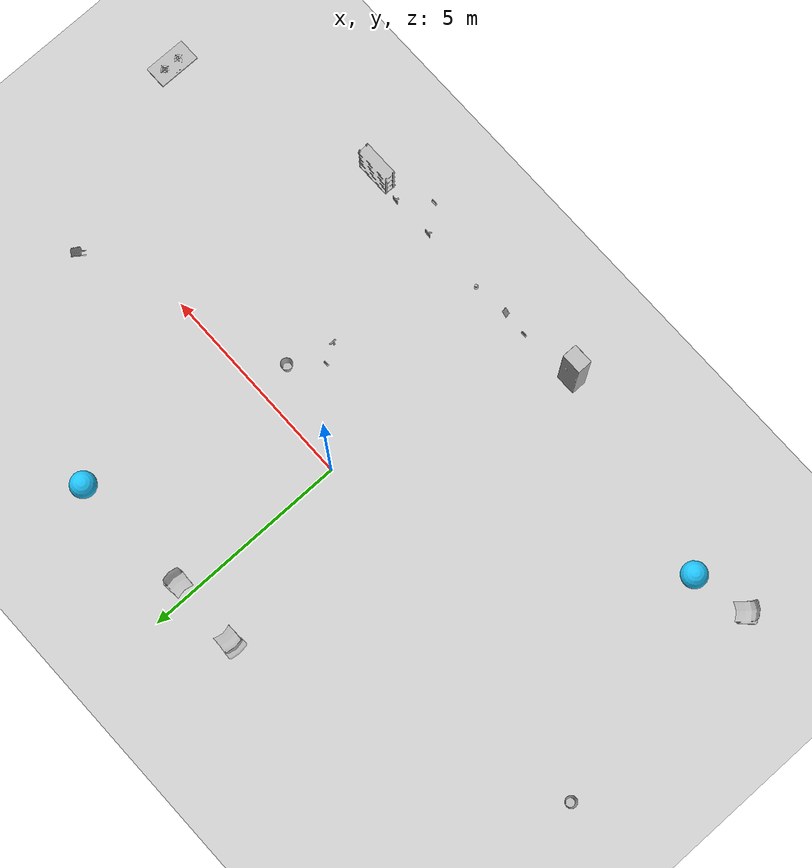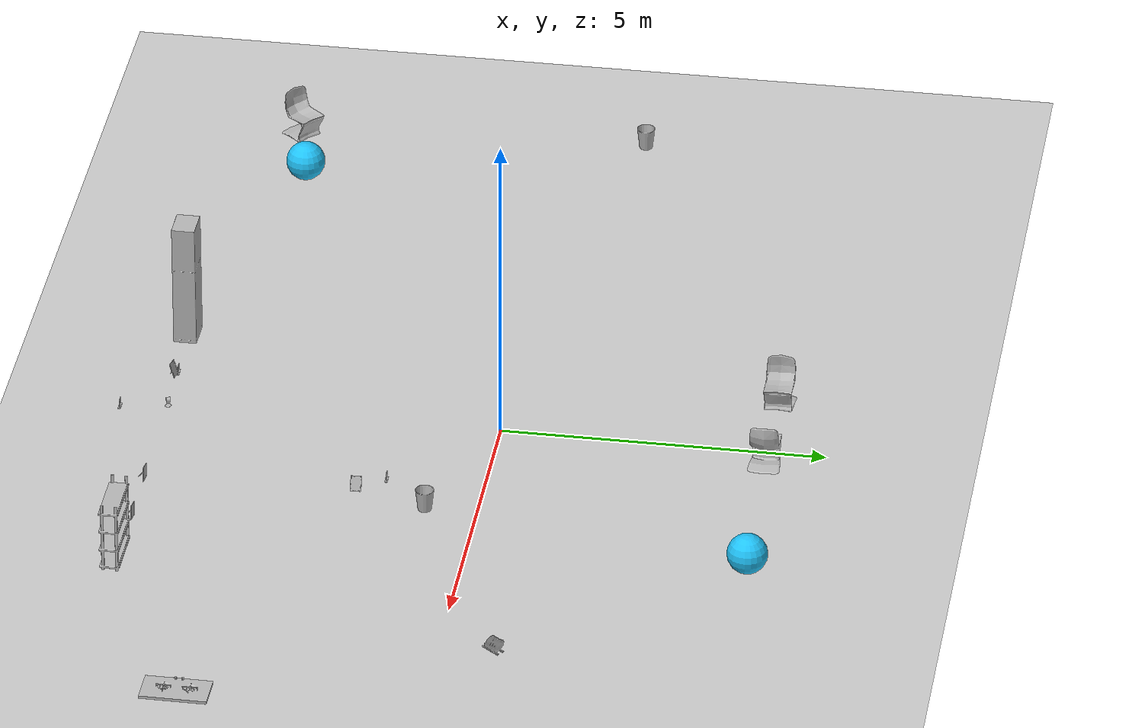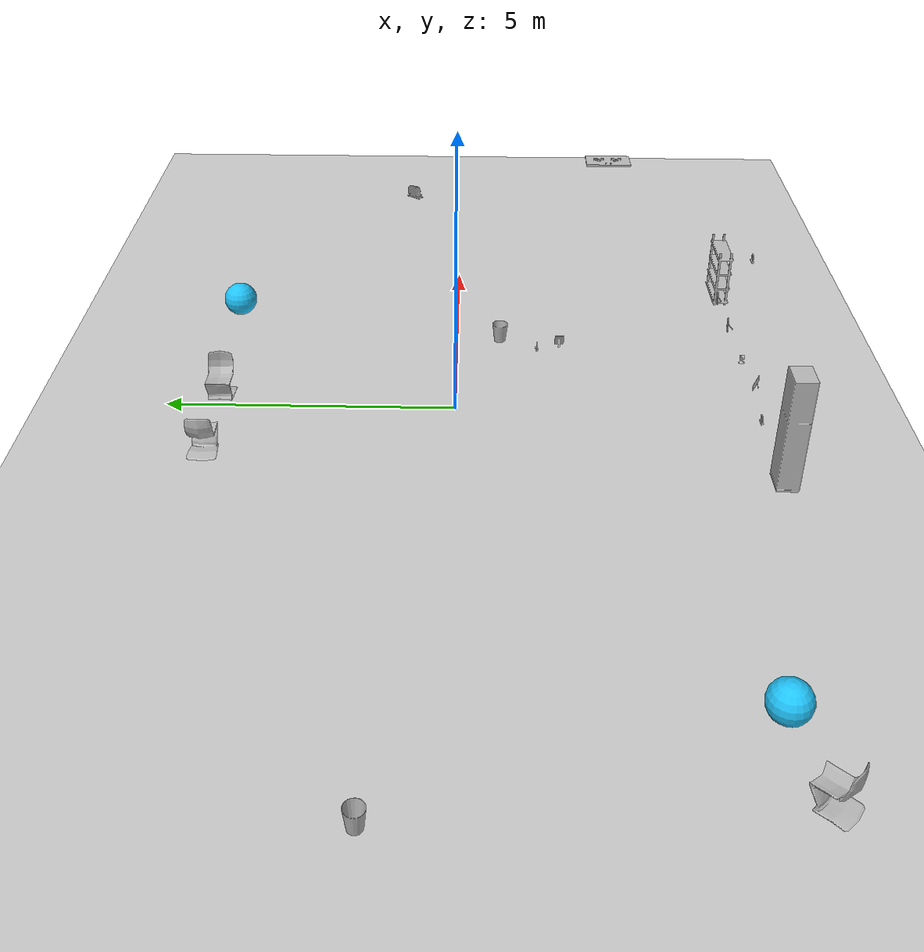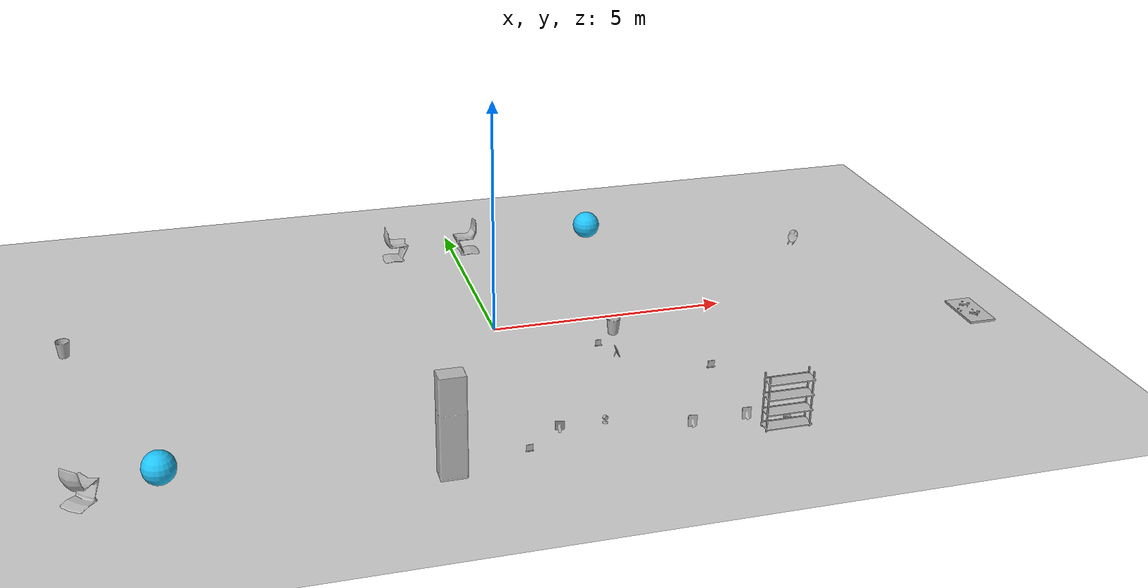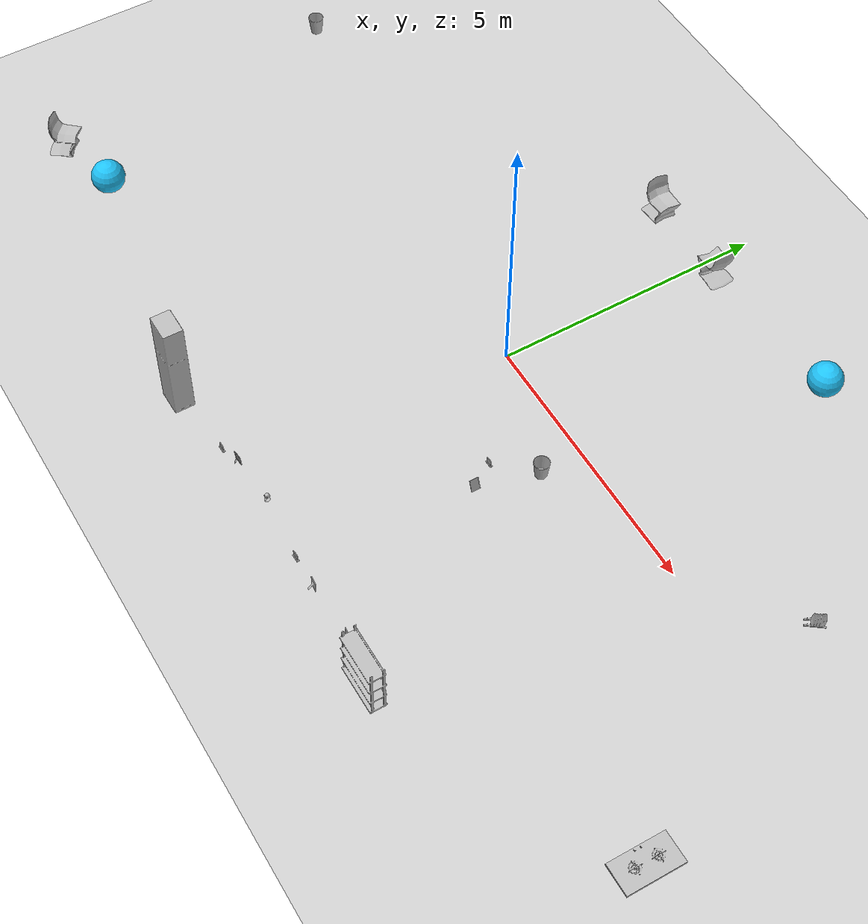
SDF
<sdf version="1.6">
 <world name="default">
  <gravity>0 0 -9.8</gravity>
  <magnetic_field>6e-06 2.3e-05 -4.2e-05</magnetic_field>
  <atmosphere type="adiabatic"/>
  <physics name="default_physics" default="0" type="ode">
   <max_step_size>0.002</max_step_size>
   <real_time_factor>1</real_time_factor>
   <real_time_update_rate>500</real_time_update_rate>
  </physics>
  <scene>
   <ambient>0.4 0.4 0.4 1</ambient>
   <background>0.7 0.7 0.7 1</background>
   <shadows>false</shadows>
   <grid>false</grid>
   <origin_visual>false</origin_visual>
  </scene>
  <spherical_coordinates>
   <surface_model>EARTH_WGS84</surface_model>
   <latitude_deg>0</latitude_deg>
   <longitude_deg>0</longitude_deg>
   <elevation>0</elevation>
   <heading_deg>0</heading_deg>
  </spherical_coordinates>
  <model name="ground_plane">
   <static>1</static>
   <link name="link">
    <collision name="collision">
     <geometry><plane><normal>0 0 1</normal><size>100 100</size></plane></geometry>
     <surface>
      <contact><collide_bitmask>65535</collide_bitmask></contact>
      <friction><ode><mu>100</mu><mu2>50</mu2></ode></friction>
     </surface>
    </collision>
    <visual name="visual">
     <cast_shadows>0</cast_shadows>
     <geometry><plane><normal>0 0 1</normal><size>100 100</size></plane></geometry>
     <material>
      <script><uri>file://media/materials/scripts/gazebo.material</uri><name>Gazebo/Grey</name></script>
     </material>
    </visual>
   </link>
  </model>
  <model name="AirconditionerB_01_001">
   <include><uri>model://aws_robomaker_residential_AirconditionerB_01</uri></include>
   <pose>-2.004656 -5.226610 0.003485 0 -0 0</pose>
  </model>
  <model name="Ball_01_001">
   <include><uri>model://aws_robomaker_residential_Ball_01</uri></include>
   <pose>3.295503 4.225674 0.318684 0 -0 0</pose>
  </model>
  <model name="Ball_01_003">
   <include><uri>model://aws_robomaker_residential_Ball_01</uri></include>
   <pose>-6.945503 -4.22174 0.318684 0 -0 0</pose>
  </model>
  <model name="ChairD_01_001">
   <include><uri>model://aws_robomaker_residential_ChairD_01</uri></include>
   <pose>-1.380775 4.104456 0 0 -0 0</pose>
  </model>
  <model name="ChairD_01_002">
   <include><uri>model://aws_robomaker_residential_ChairD_01</uri></include>
   <pose>0.325214 4.104456 0 0 -0 -3.138741</pose>
  </model>
  <model name="ChairD_01_003">
   <include><uri>model://aws_robomaker_residential_ChairD_01</uri></include>
   <pose>-8.270775 -4.504456 0 0 -0 0.869673</pose>
  </model>
  <model name="SecurityCamera_01_001">
   <include><uri>model://aws_robomaker_residential_SecurityCamera_01</uri></include>
   <pose>0.842134 -4.996294 0.495067 0 -0 -2.841039</pose>
  </model>
  <model name="CookingBench_01_001">
   <include><uri>model://aws_robomaker_residential_CookingBench_01</uri></include>
   <pose>9.038383 -3.351140 0.903610 0 -0 3.137133</pose>
   <static>true</static>
  </model>
  <model name="DeskPortraitA_01">
   <include><uri>model://aws_robomaker_residential_DeskPortraitA_01</uri></include>
   <pose>-0.036864 -5.110156 0.498660 0 -0 2.927784</pose>
  </model>
  <model name="DeskPortraitA_02">
   <include><uri>model://aws_robomaker_residential_DeskPortraitA_02</uri></include>
   <pose>2.046082 -1.892926 0.0703880 -0.018328 -0.000441 1.576216</pose>
  </model>
  <model name="DeskPortraitD_01">
   <include><uri>model://aws_robomaker_residential_DeskPortraitD_01</uri></include>
   <pose>2.645560 -5.376225 1.573738 0 -0 -3.112826</pose>
  </model>
  <model name="DeskPortraitD_02">
   <include><uri>model://aws_robomaker_residential_DeskPortraitD_02</uri></include>
   <pose>-0.589211 -5.109890 0.192145 -0.000015 -0.000174 -3.112544</pose>
  </model>
  <model name="DeskPortraitD_03">
   <include><uri>model://aws_robomaker_residential_DeskPortraitD_03</uri></include>
   <pose>1.826729 -1.464881 0.126208 0.000010 0.000006 -3.114380</pose>
  </model>
  <model name="DeskPortraitD_04">
   <include><uri>model://aws_robomaker_residential_DeskPortraitD_04</uri></include>
   <pose>4.302132 -5.176568 0.202496 0.007118 -0.000001 3.046683</pose>
  </model>
  <model name="DeskPortraitB_01">
   <include><uri>model://aws_robomaker_residential_DeskPortraitB_01</uri></include>
   <pose>3.547 -5.087950 0.202496 0.007118 -0.000001 3.046683</pose>
  </model>
  <model name="DeskPortraitB_02">
   <include><uri>model://aws_robomaker_residential_DeskPortraitB_02</uri></include>
   <pose>2.486082 -5.104568 0.202496 0.007118 -0.000001 3.046683</pose>
  </model>
  <model name="ShoeRack_01_001">
   <include><uri>model://aws_robomaker_residential_ShoeRack_01</uri></include>
   <pose>4.297978 -5.173566 0 0 -0 0</pose>
  </model>
  <model name="Tableware_01_001">
   <include><uri>model://aws_robomaker_residential_Tableware_01</uri></include>
   <pose>7.15317 0.982767 0.817812 -0.001238 -0.000976 1.02476</pose>
  </model>
  <model name="Trash_01_001">
   <include><uri>model://aws_robomaker_residential_Trash_01</uri></include>
   <pose>2.360151 -0.796238 0.011 0 -0 0</pose>
  </model>
  <model name="Trash_01_002">
   <include><uri>model://aws_robomaker_residential_Trash_01</uri></include>
   <pose>-8.704151 1.00058 0.011 0 -0 0</pose>
  </model>
  <light name="LivingRoom_CeilingLight_0" type="point">
   <pose>1.194296 4.155759 2.2 0 -0 0</pose>
   <diffuse>0.5 0.5 0.5 1</diffuse>
   <specular>0.1 0.1 0.1 1</specular>
   <attenuation>
    <range>20</range>
    <constant>0.32</constant>
    <linear>0.01</linear>
    <quadratic>0.03</quadratic>
   </attenuation>
   <cast_shadows>0</cast_shadows>
   <direction>0 0 -1</direction>
  </light>
  <light name="LivingRoom_CeilingLight_1" type="point">
   <pose>1.194296 -1.589959 2.2 0 -0 0</pose>
   <diffuse>0.5 0.5 0.5 1</diffuse>
   <specular>0.1 0.1 0.1 1</specular>
   <attenuation>
    <range>20</range>
    <constant>0.05</constant>
    <linear>0.01</linear>
    <quadratic>0.09</quadratic>
   </attenuation>
   <cast_shadows>0</cast_shadows>
   <direction>0 0 -1</direction>
  </light>
  <light name="LivingRoom_WallLight_0" type="point">
   <pose>1.76956 -5.444370 2.2 0 -0 0</pose>
   <diffuse>0.24 0.24 0.24 1</diffuse>
   <specular>0.1 0.1 0.1 1</specular>
   <attenuation>
    <range>20</range>
    <constant>0.12</constant>
    <linear>0.00</linear>
    <quadratic>0.03</quadratic>
   </attenuation>
   <direction>0 0 -1</direction>
  </light>
  <light name="LivingRoom_WallLight_1" type="point">
   <pose>-0.13826 -5.444370 2.2 0 -0 0</pose>
   <diffuse>0.24 0.24 0.24 1</diffuse>
   <specular>0.1 0.1 0.1 1</specular>
   <attenuation>
    <range>20</range>
    <constant>0.12</constant>
    <linear>0.00</linear>
    <quadratic>0.03</quadratic>
   </attenuation>
   <direction>0 0 -1</direction>
  </light>
  <light name="TV_Light_0" type="point">
   <pose>0.8269 -4.939577 1.1 0 -0 0</pose>
   <diffuse>0.31372 0.31372 0.34901 1</diffuse>
   <specular>0.1 0.1 0.1 1</specular>
   <attenuation>
    <range>3</range>
    <constant>0.10</constant>
    <linear>0.04</linear>
    <quadratic>0.50</quadratic>
   </attenuation>
   <direction>0 0 -1</direction>
  </light>
  <light name="BedRoom_Portrait_Light_0" type="spot">
   <pose>-6.190379 -1.829697 1.5587 0.3 -0 0.0</pose>
   <diffuse>0.5 0.5 0.5 1</diffuse>
   <specular>0.1 0.1 0.1 1</specular>
   <attenuation>
    <range>20</range>
    <constant>0.50</constant>
    <linear>0.01</linear>
    <quadratic>0.00</quadratic>
   </attenuation>
   <spot><inner_angle>0.6</inner_angle><outer_angle>1.0</outer_angle><falloff>1.0</falloff></spot>
   <direction>0 0 -1</direction>
  </light>
  <light name="BedRoom_CeilingLight_0" type="point">
   <pose>-6.451061 -0.692040 2.000000 0 -0 0</pose>
   <diffuse>0.5 0.5 0.5 1</diffuse>
   <specular>0.1 0.1 0.1 1</specular>
   <attenuation>
    <range>20</range>
    <constant>0.32</constant>
    <linear>0.01</linear>
    <quadratic>0.03</quadratic>
   </attenuation>
   <cast_shadows>0</cast_shadows>
   <direction>0 0 -1</direction>
  </light>
  <light name="Kitchen_CeilingLight_0" type="point">
   <pose>7.8582 -1.5905 2.280000 0 -0 0</pose>
   <diffuse>0.5 0.5 0.5 1</diffuse>
   <specular>0.1 0.1 0.1 1</specular>
   <attenuation>
    <range>20</range>
    <constant>0.3</constant>
    <linear>0.01</linear>
    <quadratic>0.01</quadratic>
   </attenuation>
   <cast_shadows>0</cast_shadows>
   <direction>0 0 -1</direction>
  </light>
 </world>
</sdf>

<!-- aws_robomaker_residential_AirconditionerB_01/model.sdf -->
<sdf version="1.6">
  <model name="aws_robomaker_residential_AirconditionerB_01">
  <static>true</static>
    <link name="link">
      <inertial>
        <mass>1</mass>
      </inertial>
      <collision name="collision">
        <geometry>
          <mesh>
            <uri>file://models/aws_robomaker_residential_AirconditionerB_01/meshes/aws_AirconditionerB_01_collision.DAE</uri>
            <scale>1 1 1</scale>
          </mesh>
        </geometry>
      </collision>
      <visual name="visual">
	    <geometry>
          <mesh>
            <uri>file://models/aws_robomaker_residential_AirconditionerB_01/meshes/aws_AirconditionerB_01_visual.DAE</uri>
          </mesh>
        </geometry>
      <meta> <layer> 1 </layer></meta>
</visual>
    </link>
  </model>
</sdf>

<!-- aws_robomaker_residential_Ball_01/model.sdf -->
<sdf version="1.6">
  <model name="aws_robomaker_residential_Ball_01">
  <static>true</static>
  <static>true</static>
  <static>true</static>
    <link name="link">
      <inertial>
        <mass>0.12</mass>
        <!-- 2r = 62cm -->
          <inertia>
            <ixx>0.030752</ixx>
            <ixy>0</ixy>
            <ixz>0</ixz>
            <iyy>0.030752</iyy>
            <iyz>0</iyz>
            <izz>0.030752</izz>
          </inertia>
      </inertial>
      <collision name="collision">

        <geometry>
          <sphere>
            <radius>0.31 </radius>
          </sphere>

        </geometry>

        <surface>
          <friction>
            <ode>
              <mu>0.85</mu>
              <mu2>0.85</mu2>
            </ode>
          </friction>

        <!-- Add some bounciness to the ball -->
          <contact>
            <ode>
              <kd>8500</kd>
              <max_vel>5.1</max_vel>
            </ode>
          </contact>
        </surface>

      </collision>
      <visual name="visual">
	    <geometry>
          <sphere>
            <radius>0.31 </radius>
          </sphere>
      </geometry>
          <material>
            <diffuse>0.12 0.76 0.97 1</diffuse>
            <ambient>0.03 0.21 0.27 1</ambient>
          </material>
      <meta> <layer> 1 </layer></meta>
</visual>
    </link>
  </model>
</sdf>

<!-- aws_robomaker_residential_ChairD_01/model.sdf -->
<sdf version="1.6">
  <model name="aws_robomaker_residential_ChairD_01">
  <static>true</static>
  <static>true</static>
  <static>true</static>
    <link name="link">

      <inertial>
        <mass>4.5</mass>
          <inertia>
            <ixy>0</ixy>
            <ixz>0</ixz>
            <iyz>0</iyz>
            <ixx>0.217</ixx>
            <iyy>0.217</iyy>
            <izz>0.067</izz>
          </inertia>
      </inertial>

      <collision name="collision">

        <geometry>
          <mesh>
            <uri>file://models/aws_robomaker_residential_ChairD_01/meshes/aws_ChairD_01_collision.DAE</uri>
            <scale>1 1 1</scale>
          </mesh>
        </geometry>

      </collision>
      <visual name="visual">
	    <geometry>
          <mesh>
            <uri>file://models/aws_robomaker_residential_ChairD_01/meshes/aws_ChairD_01_visual.DAE</uri>
          </mesh>
        </geometry>
      <meta> <layer> 1 </layer></meta>
</visual>
    </link>
  </model>
</sdf>

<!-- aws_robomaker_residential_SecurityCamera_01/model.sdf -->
<sdf version="1.6">
  <model name="aws_robomaker_residential_SecurityCamera_01">
  <static>true</static>
    <link name="link">
      <inertial>
        <mass>1</mass>
        <inertia>
          <ixx>18.2222</ixx>
          <ixy>0</ixy>
          <ixz>0</ixz>
          <iyy>18.2222</iyy>
          <iyz>0</iyz>
          <izz>0.0018767</izz>
        </inertia>
      </inertial>
      <collision name="collision">
        <geometry>
          <mesh>
            <uri>file://models/aws_robomaker_residential_SecurityCamera_01/meshes/aws_SecurityCamera_01_collision.DAE</uri>
            <scale>1 1 1</scale>
          </mesh>
        </geometry>
      </collision>
      <visual name="visual">
	    <geometry>
          <mesh>
            <uri>file://models/aws_robomaker_residential_SecurityCamera_01/meshes/aws_SecurityCamera_01_visual.DAE</uri>
          </mesh>
        </geometry>
        <meta>
          <layer>2</layer>
        </meta>
      </visual>
    </link>
  </model>
</sdf>

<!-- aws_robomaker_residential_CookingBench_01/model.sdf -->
<sdf version="1.6">
  <model name="aws_robomaker_residential_CookingBench_01">
  <static>true</static>
    <link name="link">
      <inertial>
        <mass>1</mass>
      </inertial>
      <collision name="collision">
        <geometry>
          <mesh>
            <uri>file://models/aws_robomaker_residential_CookingBench_01/meshes/aws_CookingBench_01_collision.DAE</uri>
            <scale>1 1 1</scale>
          </mesh>
        </geometry>
      </collision>
      <visual name="visual">
	    <geometry>
          <mesh>
            <uri>file://models/aws_robomaker_residential_CookingBench_01/meshes/aws_CookingBench_01_visual.DAE</uri>
          </mesh>
        </geometry>
      <meta> <layer> 1 </layer></meta>
</visual>
    </link>
  </model>
</sdf>

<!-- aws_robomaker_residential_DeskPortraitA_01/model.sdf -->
<sdf version="1.6">
  <model name="aws_robomaker_residential_DeskPortraitA_01">
  <static>true</static>
    <link name="link">

      <inertial>
        <mass>1</mass>
        <inertia>
            <ixx>0.0835</ixx>
            <ixy>0</ixy>
            <ixz>0</ixz>
            <iyy>0.16</iyy>
            <iyz>0</iyz>
            <izz>0.08347</izz>
        </inertia>
      </inertial>

      <collision name="collision">
        <geometry>
          <mesh>
            <uri>file://models/aws_robomaker_residential_DeskPortraitA_01/meshes/aws_DeskPortraitA_01_collision.DAE</uri>
            <scale>1 1 1</scale>
          </mesh>
        </geometry>
      </collision>

      <visual name="visual">
	    <geometry>
          <mesh>
            <uri>file://models/aws_robomaker_residential_DeskPortraitA_01/meshes/aws_DeskPortraitA_01_visual.DAE</uri>
          </mesh>
        </geometry>
      <meta> <layer> 1 </layer></meta>
</visual>
    </link>
  </model>
</sdf>

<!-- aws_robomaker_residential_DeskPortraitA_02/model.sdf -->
<sdf version="1.6">
  <model name="aws_robomaker_residential_DeskPortraitA_02">
  <static>true</static>
    <link name="link">

      <inertial>
        <mass>1</mass>
        <inertia>
            <ixx>0.0835</ixx>
            <ixy>0</ixy>
            <ixz>0</ixz>
            <iyy>0.16</iyy>
            <iyz>0</iyz>
            <izz>0.08347</izz>
        </inertia>
      </inertial>

      <collision name="collision">
        <geometry>
          <mesh>
            <uri>file://models/aws_robomaker_residential_DeskPortraitA_02/meshes/aws_DeskPortraitA_01_collision.DAE</uri>
            <scale>1 1 1</scale>
          </mesh>
        </geometry>
      </collision>

      <visual name="visual">
	    <geometry>
          <mesh>
            <uri>file://models/aws_robomaker_residential_DeskPortraitA_02/meshes/aws_DeskPortraitA_01_visual.DAE</uri>
          </mesh>
        </geometry>
      <meta> <layer> 1 </layer></meta>
</visual>
    </link>
  </model>
</sdf>

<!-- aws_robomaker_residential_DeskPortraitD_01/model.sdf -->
<sdf version="1.6">
  <model name="aws_robomaker_residential_DeskPortraitD_01">
  <static>true</static>
    <link name="link">
      <inertial>
        <mass>0.4</mass>
          <inertia>
            <ixx>0.0616</ixx>
            <ixy>0</ixy>
            <ixz>0</ixz>
            <iyy>0.1313</iyy>
            <iyz>0</iyz>
            <izz>0.0803</izz>
          </inertia>
      </inertial>

      <collision name="collision">
        <geometry>
          <mesh>
            <uri>file://models/aws_robomaker_residential_DeskPortraitD_01/meshes/aws_DeskPortraitD_01_collision.DAE</uri>
            <scale>1 1 1</scale>
          </mesh>
        </geometry>

        <surface>
          <friction>
            <ode>
              <mu>0.7</mu>
              <mu2>0.7</mu2>
            </ode>
          </friction>

          <contact>
            <ode>
              <kd>28500</kd>
            </ode>
          </contact>

        </surface>

      </collision>

      <visual name="visual">
	    <geometry>
          <mesh>
            <uri>file://models/aws_robomaker_residential_DeskPortraitD_01/meshes/aws_DeskPortraitD_01_visual.DAE</uri>
          </mesh>
        </geometry>
      <meta> <layer> 1 </layer></meta>
</visual>
    </link>
  </model>
</sdf>

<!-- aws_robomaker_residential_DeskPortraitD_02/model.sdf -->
<sdf version="1.6">
  <model name="aws_robomaker_residential_DeskPortraitD_02">
  <static>true</static>
    <link name="link">
      <inertial>
        <mass>0.4</mass>
          <inertia>
            <ixx>0.0616</ixx>
            <ixy>0</ixy>
            <ixz>0</ixz>
            <iyy>0.1313</iyy>
            <iyz>0</iyz>
            <izz>0.0803</izz>
          </inertia>
      </inertial>

      <collision name="collision">
        <geometry>
          <mesh>
            <uri>file://models/aws_robomaker_residential_DeskPortraitD_02/meshes/aws_DeskPortraitD_01_collision.DAE</uri>
            <scale>1 1 1</scale>
          </mesh>
        </geometry>

        <surface>
          <friction>
            <ode>
              <mu>0.7</mu>
              <mu2>0.7</mu2>
            </ode>
          </friction>

          <contact>
            <ode>
              <kd>28500</kd>
            </ode>
          </contact>

        </surface>

      </collision>

      <visual name="visual">
	    <geometry>
          <mesh>
            <uri>file://models/aws_robomaker_residential_DeskPortraitD_02/meshes/aws_DeskPortraitD_01_visual.DAE</uri>
          </mesh>
        </geometry>
      <meta> <layer> 1 </layer></meta>
</visual>
    </link>
  </model>
</sdf>

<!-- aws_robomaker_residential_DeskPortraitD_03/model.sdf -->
<sdf version="1.6">
  <model name="aws_robomaker_residential_DeskPortraitD_03">
  <static>true</static>
    <link name="link">
      <inertial>
        <mass>0.4</mass>
          <inertia>
            <ixx>0.0616</ixx>
            <ixy>0</ixy>
            <ixz>0</ixz>
            <iyy>0.1313</iyy>
            <iyz>0</iyz>
            <izz>0.0803</izz>
          </inertia>
      </inertial>

      <collision name="collision">
        <geometry>
          <mesh>
            <uri>file://models/aws_robomaker_residential_DeskPortraitD_03/meshes/aws_DeskPortraitD_01_collision.DAE</uri>
            <scale>1 1 1</scale>
          </mesh>
        </geometry>

        <surface>
          <friction>
            <ode>
              <mu>0.7</mu>
              <mu2>0.7</mu2>
            </ode>
          </friction>

          <contact>
            <ode>
              <kd>28500</kd>
            </ode>
          </contact>

        </surface>

      </collision>

      <visual name="visual">
	    <geometry>
          <mesh>
            <uri>file://models/aws_robomaker_residential_DeskPortraitD_03/meshes/aws_DeskPortraitD_01_visual.DAE</uri>
          </mesh>
        </geometry>
      <meta> <layer> 1 </layer></meta>
</visual>
    </link>
  </model>
</sdf>

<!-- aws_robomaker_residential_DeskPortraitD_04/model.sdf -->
<sdf version="1.6">
  <model name="aws_robomaker_residential_DeskPortraitD_04">
  <static>true</static>
    <link name="link">
      <inertial>
        <mass>0.4</mass>
          <inertia>
            <ixx>0.0616</ixx>
            <ixy>0</ixy>
            <ixz>0</ixz>
            <iyy>0.1313</iyy>
            <iyz>0</iyz>
            <izz>0.0803</izz>
          </inertia>
      </inertial>

      <collision name="collision">
        <geometry>
          <mesh>
            <uri>file://models/aws_robomaker_residential_DeskPortraitD_04/meshes/aws_DeskPortraitD_01_collision.DAE</uri>
            <scale>1 1 1</scale>
          </mesh>
        </geometry>

        <surface>
          <friction>
            <ode>
              <mu>0.7</mu>
              <mu2>0.7</mu2>
            </ode>
          </friction>

          <contact>
            <ode>
              <kd>28500</kd>
            </ode>
          </contact>

        </surface>

      </collision>

      <visual name="visual">
	    <geometry>
          <mesh>
            <uri>file://models/aws_robomaker_residential_DeskPortraitD_04/meshes/aws_DeskPortraitD_01_visual.DAE</uri>
          </mesh>
        </geometry>
      <meta> <layer> 1 </layer></meta>
</visual>
    </link>
  </model>
</sdf>

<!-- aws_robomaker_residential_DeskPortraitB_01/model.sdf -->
<sdf version="1.6">
  <model name="aws_robomaker_residential_DeskPortraitB_01">
  <static>true</static>
    <link name="link">

      <inertial>
        <mass>1</mass>
        <inertia>
            <ixx>0.0135</ixx>
            <ixy>0</ixy>
            <ixz>0</ixz>
            <iyy>0.02</iyy>
            <iyz>0</iyz>
            <izz>0.01347</izz>
        </inertia>
      </inertial>

      <collision name="collision">
        <geometry>
          <mesh>
            <uri>file://models/aws_robomaker_residential_DeskPortraitB_01/meshes/aws_DeskPortraitB_01_collision.DAE</uri>
            <scale>1 1 1</scale>
          </mesh>
        </geometry>
      </collision>

      <visual name="visual">
	    <geometry>
          <mesh>
            <uri>file://models/aws_robomaker_residential_DeskPortraitB_01/meshes/aws_DeskPortraitB_01_visual.DAE</uri>
          </mesh>
        </geometry>
      <meta> <layer> 1 </layer></meta>
</visual>
    </link>
  </model>
</sdf>

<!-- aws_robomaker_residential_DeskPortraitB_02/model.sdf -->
<sdf version="1.6">
  <model name="aws_robomaker_residential_DeskPortraitB_02">
  <static>true</static>
    <link name="link">

      <inertial>
        <mass>1</mass>
        <inertia>
            <ixx>0.0135</ixx>
            <ixy>0</ixy>
            <ixz>0</ixz>
            <iyy>0.02</iyy>
            <iyz>0</iyz>
            <izz>0.01347</izz>
        </inertia>
      </inertial>

      <collision name="collision">
        <geometry>
          <mesh>
            <uri>file://models/aws_robomaker_residential_DeskPortraitB_02/meshes/aws_DeskPortraitB_01_collision.DAE</uri>
            <scale>1 1 1</scale>
          </mesh>
        </geometry>
      </collision>

      <visual name="visual">
	    <geometry>
          <mesh>
            <uri>file://models/aws_robomaker_residential_DeskPortraitB_02/meshes/aws_DeskPortraitB_01_visual.DAE</uri>
          </mesh>
        </geometry>
      <meta> <layer> 1 </layer></meta>
</visual>
    </link>
  </model>
</sdf>

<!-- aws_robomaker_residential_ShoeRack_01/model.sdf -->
<sdf version="1.6">
  <model name="aws_robomaker_residential_ShoeRack_01">
  <static>true</static>
    <link name="link">

      <inertial>
        <mass>6</mass>
          <inertia>
            <ixx>0.02</ixx>
            <ixy>0</ixy>
            <ixz>0</ixz>
            <iyy>0.04</iyy>
            <iyz>0</iyz>
            <ixx>0.02</ixx>
          </inertia>
      </inertial>

      <collision name="collision">

        <geometry>
          <mesh>
            <uri>file://models/aws_robomaker_residential_ShoeRack_01/meshes/aws_ShoeRack_01_collision.DAE</uri>
            <scale>1 1 1</scale>
          </mesh>
        </geometry>

        <surface>
          <friction>
            <ode>
              <mu>0.2</mu>
              <mu2>0.2</mu2>
            </ode>
          </friction>

          <contact>
            <ode>
              <kd>2500</kd>
            </ode>
          </contact>

        </surface>

      </collision>

      <visual name="visual">
	    <geometry>
          <mesh>
            <uri>file://models/aws_robomaker_residential_ShoeRack_01/meshes/aws_ShoeRack_01_visual.DAE</uri>
          </mesh>
        </geometry>
      <meta> <layer> 1 </layer></meta>
</visual>

    </link>
  </model>
</sdf>

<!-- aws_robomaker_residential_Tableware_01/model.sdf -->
<sdf version="1.6">
  <model name="aws_robomaker_residential_Tableware_01">
  <static>true</static>
    <link name="link">
      <inertial>
        <mass>1</mass>
      </inertial>
      <collision name="collision">
        <geometry>
          <mesh>
            <uri>file://models/aws_robomaker_residential_Tableware_01/meshes/aws_Tableware_01_collision.DAE</uri>
            <scale>1 1 1</scale>
          </mesh>
        </geometry>
      </collision>
      <visual name="visual">
	    <geometry>
          <mesh>
            <uri>file://models/aws_robomaker_residential_Tableware_01/meshes/aws_Tableware_01_visual.DAE</uri>
          </mesh>
        </geometry>
      <meta> <layer> 1 </layer></meta>
</visual>
    </link>
  </model>
</sdf>

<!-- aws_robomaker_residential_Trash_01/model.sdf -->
<sdf version="1.6">
  <model name="aws_robomaker_residential_Trash_01">
  <static>true</static>
  <static>true</static>
    <link name="link">

      <inertial>

        <mass>0.1</mass>
        <inertia>
            <ixy>0</ixy>
            <ixz>0</ixz>
            <iyz>0</iyz>
            <ixx>0.05288</ixx>
            <iyy>0.05288</iyy>
            <izz>0.09132</izz>
          </inertia>
      </inertial>

      <collision name="collision">
        <geometry>
          <mesh>
            <uri>file://models/aws_robomaker_residential_Trash_01/meshes/aws_Trash_01_collision.DAE</uri>
            <scale>1 1 1</scale>
          </mesh>
        </geometry>

      </collision>

      <visual name="visual">
	    <geometry>
          <mesh>
            <uri>file://models/aws_robomaker_residential_Trash_01/meshes/aws_Trash_01_visual.DAE</uri>
          </mesh>
        </geometry>
      <meta> <layer> 1 </layer></meta>
</visual>
    </link>
  </model>
</sdf>
